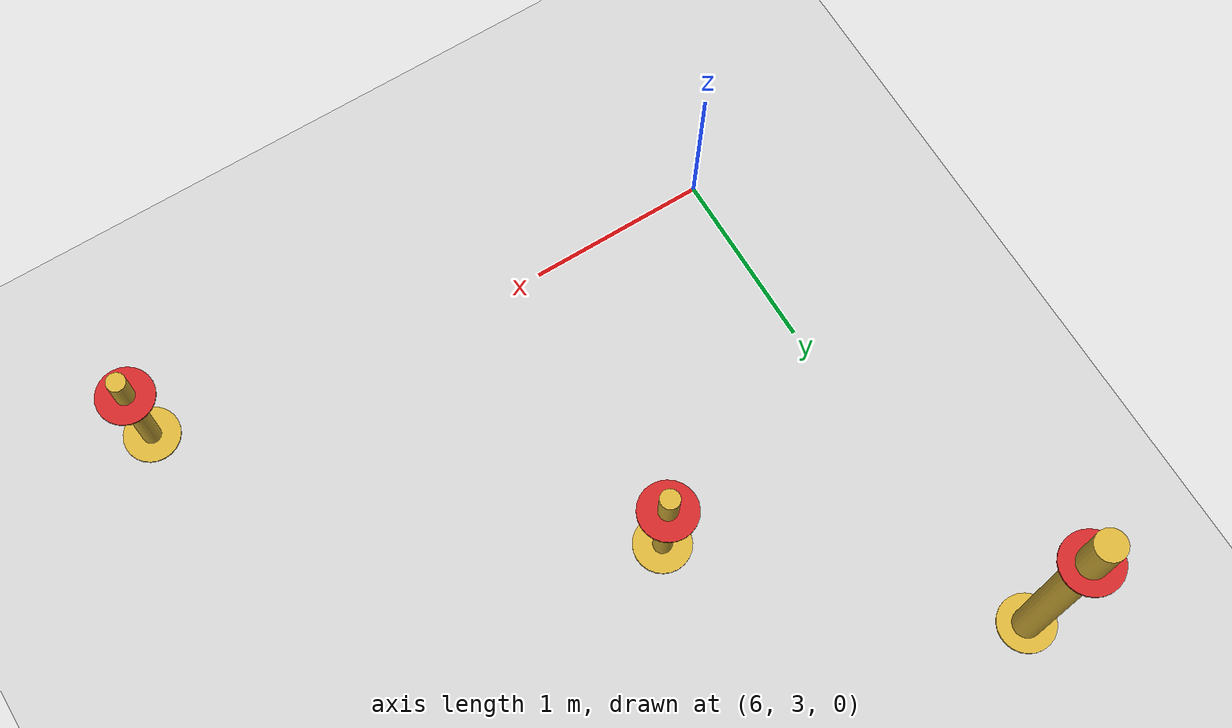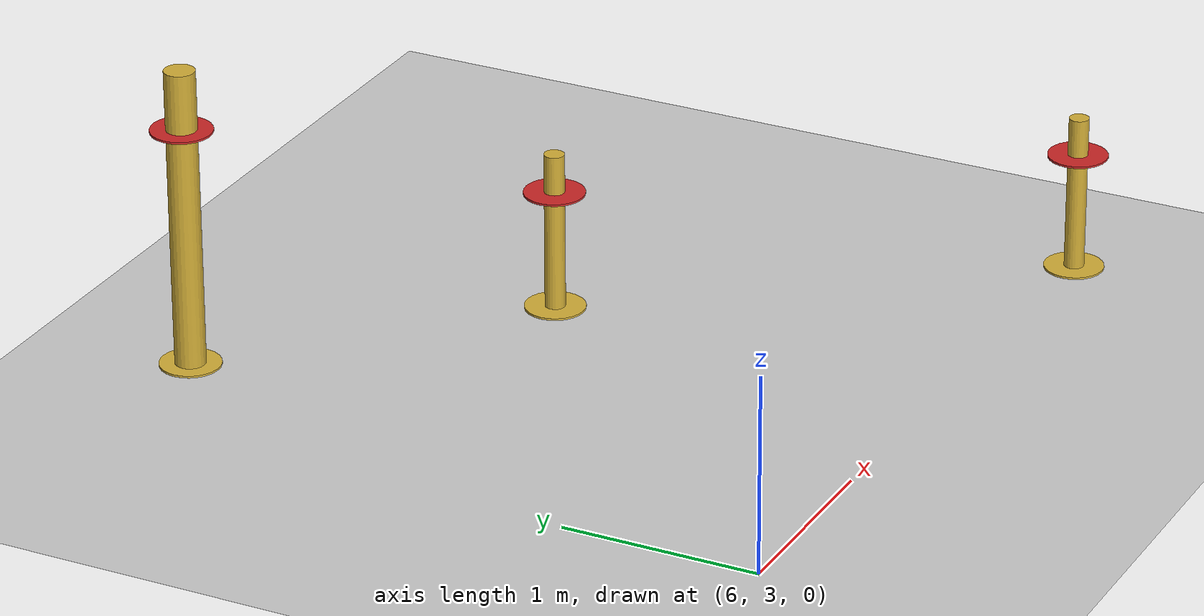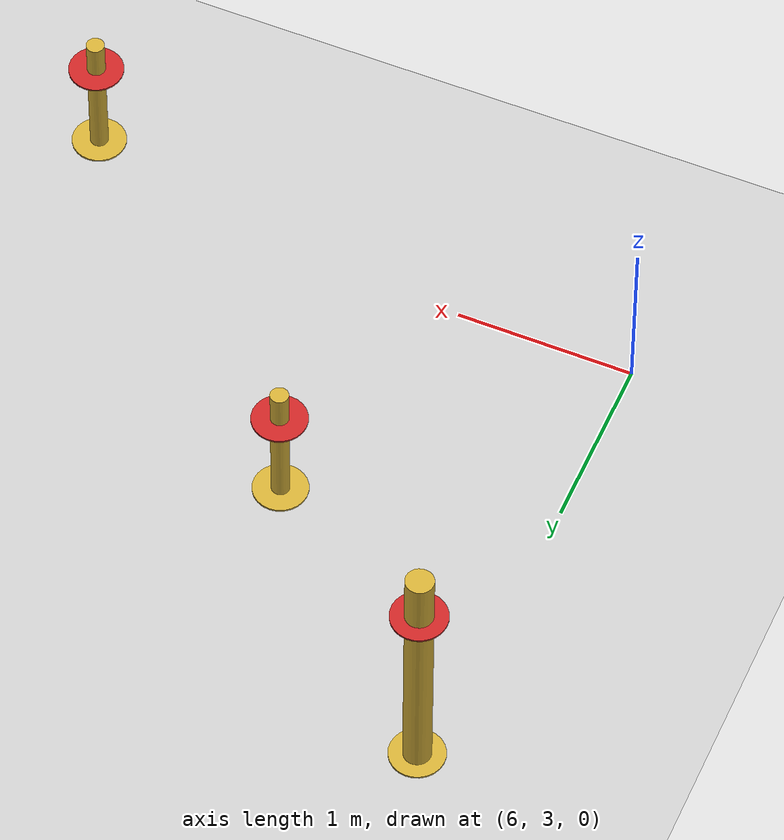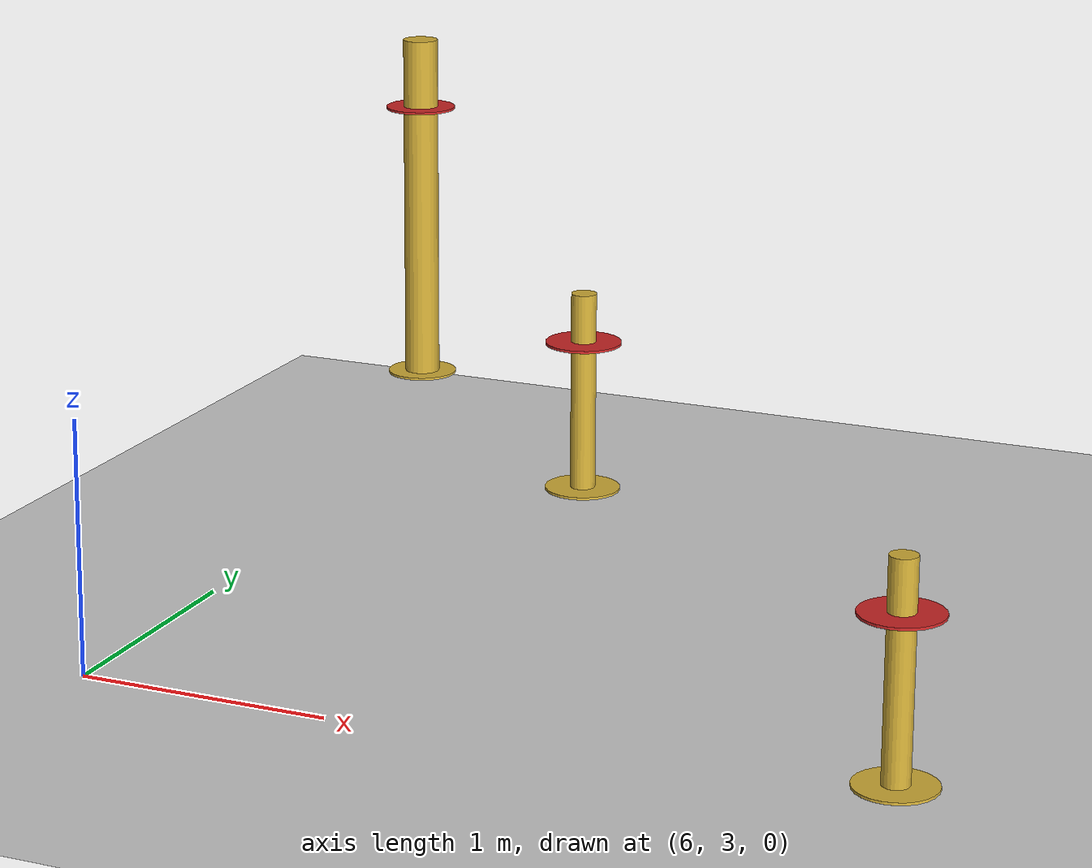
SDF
<sdf version="1.7">
 <world name="default">
  <model name="ground_plane">
   <static>1</static>
   <link name="link">
    <collision name="collision">
     <geometry><plane><normal>0 0 1</normal><size>100 100</size></plane></geometry>
     <surface>
      <contact><collide_bitmask>65535</collide_bitmask></contact>
      <friction><ode><mu>100</mu><mu2>50</mu2></ode></friction>
     </surface>
    </collision>
    <visual name="visual">
     <cast_shadows>0</cast_shadows>
     <geometry><plane><normal>0 0 1</normal><size>100 100</size></plane></geometry>
     <material>
      <script><uri>file://media/materials/scripts/gazebo.material</uri><name>Gazebo/Grey</name></script>
     </material>
    </visual>
   </link>
  </model>
  <model name="pole_tier_1_6">
   <link name="link">
    <inertial>
     <mass>1</mass>
     <inertia><ixx>0.145833</ixx><ixy>0</ixy><ixz>0</ixz><iyy>0.145833</iyy><iyz>0</iyz><izz>0.125</izz></inertia>
    </inertial>
    <pose>0 0 0.4 0 -0 0</pose>
    <visual name="visual">
     <geometry><cylinder><radius>0.05</radius><length>0.8</length></cylinder></geometry>
     <material>
      <script><name>Gazebo/Gray</name><uri>file://media/materials/scripts/gazebo.material</uri></script>
      <shader type="pixel"><normal_map>__default__</normal_map></shader>
      <ambient>0.83 0.686 0.216 1</ambient>
      <diffuse>0.83 0.686 0.216 1</diffuse>
      <specular>0.83 0.686 0.216 1</specular>
      <emissive>0 0 0 1</emissive>
     </material>
    </visual>
    <collision name="collision">
     <geometry><cylinder><radius>0.05</radius><length>0.8</length></cylinder></geometry>
     <surface>
      <friction>
       <ode><mu>1</mu><mu2>1</mu2><fdir1>0 0 0</fdir1><slip1>0</slip1><slip2>0</slip2></ode>
       <torsional>
        <coefficient>1</coefficient>
        <patch_radius>0</patch_radius>
        <surface_radius>0</surface_radius>
        <use_patch_radius>1</use_patch_radius>
        <ode><slip>0</slip></ode>
       </torsional>
      </friction>
      <bounce><restitution_coefficient>0</restitution_coefficient><threshold>1e+06</threshold></bounce>
      <contact>
       <collide_without_contact>0</collide_without_contact>
       <collide_without_contact_bitmask>1</collide_without_contact_bitmask>
       <collide_bitmask>1</collide_bitmask>
       <ode>
        <soft_cfm>0</soft_cfm>
        <soft_erp>0.2</soft_erp>
        <kp>1e+13</kp>
        <kd>1</kd>
        <max_vel>0.01</max_vel>
        <min_depth>0</min_depth>
       </ode>
       <bullet>
        <split_impulse>1</split_impulse>
        <split_impulse_penetration_threshold>-0.01</split_impulse_penetration_threshold>
        <soft_cfm>0</soft_cfm>
        <soft_erp>0.2</soft_erp>
        <kp>1e+13</kp>
        <kd>1</kd>
       </bullet>
      </contact>
     </surface>
    </collision>
   </link>
   <link name="link_clone">
    <inertial>
     <mass>1</mass>
     <inertia><ixx>0.145833</ixx><ixy>0</ixy><ixz>0</ixz><iyy>0.145833</iyy><iyz>0</iyz><izz>0.125</izz></inertia>
    </inertial>
    <visual name="visual">
     <geometry><cylinder><radius>0.15</radius><length>0.01</length></cylinder></geometry>
     <material>
      <script><name>Gazebo/Grey</name><uri>file://media/materials/scripts/gazebo.material</uri></script>
      <shader type="pixel"><normal_map>__default__</normal_map></shader>
      <ambient>0.83 0.686 0.216 1</ambient>
      <diffuse>0.7 0.7 0.7 1</diffuse>
      <specular>0.01 0.01 0.01 1</specular>
      <emissive>0 0 0 1</emissive>
     </material>
    </visual>
    <collision name="collision">
     <geometry><cylinder><radius>0.15</radius><length>0.01</length></cylinder></geometry>
     <surface>
      <friction>
       <ode><mu>1</mu><mu2>1</mu2><fdir1>0 0 0</fdir1><slip1>0</slip1><slip2>0</slip2></ode>
       <torsional>
        <coefficient>1</coefficient>
        <patch_radius>0</patch_radius>
        <surface_radius>0</surface_radius>
        <use_patch_radius>1</use_patch_radius>
        <ode><slip>0</slip></ode>
       </torsional>
      </friction>
      <bounce><restitution_coefficient>0</restitution_coefficient><threshold>1e+06</threshold></bounce>
      <contact>
       <collide_without_contact>0</collide_without_contact>
       <collide_without_contact_bitmask>1</collide_without_contact_bitmask>
       <collide_bitmask>1</collide_bitmask>
       <ode>
        <soft_cfm>0</soft_cfm>
        <soft_erp>0.2</soft_erp>
        <kp>1e+13</kp>
        <kd>1</kd>
        <max_vel>0.01</max_vel>
        <min_depth>0</min_depth>
       </ode>
       <bullet>
        <split_impulse>1</split_impulse>
        <split_impulse_penetration_threshold>-0.01</split_impulse_penetration_threshold>
        <soft_cfm>0</soft_cfm>
        <soft_erp>0.2</soft_erp>
        <kp>1e+13</kp>
        <kd>1</kd>
       </bullet>
      </contact>
     </surface>
    </collision>
   </link>
   <link name="link_clone_clone">
    <inertial>
     <mass>1</mass>
     <inertia><ixx>0.145833</ixx><ixy>0</ixy><ixz>0</ixz><iyy>0.145833</iyy><iyz>0</iyz><izz>0.125</izz></inertia>
    </inertial>
    <pose>0 0 0.6 0 -0 0</pose>
    <visual name="visual">
     <geometry><cylinder><radius>0.15</radius><length>0.01</length></cylinder></geometry>
     <material>
      <script><name>Gazebo/Red</name><uri>file://media/materials/scripts/gazebo.material</uri></script>
      <shader type="pixel"><normal_map>__default__</normal_map></shader>
      <ambient>0.83 0.686 0.216 1</ambient>
      <diffuse>0.7 0.7 0.7 1</diffuse>
      <specular>0.01 0.01 0.01 1</specular>
      <emissive>0 0 0 1</emissive>
     </material>
    </visual>
    <collision name="collision">
     <geometry><cylinder><radius>0.15</radius><length>0.01</length></cylinder></geometry>
     <surface>
      <friction>
       <ode><mu>1</mu><mu2>1</mu2><fdir1>0 0 0</fdir1><slip1>0</slip1><slip2>0</slip2></ode>
       <torsional>
        <coefficient>1</coefficient>
        <patch_radius>0</patch_radius>
        <surface_radius>0</surface_radius>
        <use_patch_radius>1</use_patch_radius>
        <ode><slip>0</slip></ode>
       </torsional>
      </friction>
      <bounce><restitution_coefficient>0</restitution_coefficient><threshold>1e+06</threshold></bounce>
      <contact>
       <collide_without_contact>0</collide_without_contact>
       <collide_without_contact_bitmask>1</collide_without_contact_bitmask>
       <collide_bitmask>1</collide_bitmask>
       <ode>
        <soft_cfm>0</soft_cfm>
        <soft_erp>0.2</soft_erp>
        <kp>1e+13</kp>
        <kd>1</kd>
        <max_vel>0.01</max_vel>
        <min_depth>0</min_depth>
       </ode>
       <bullet>
        <split_impulse>1</split_impulse>
        <split_impulse_penetration_threshold>-0.01</split_impulse_penetration_threshold>
        <soft_cfm>0</soft_cfm>
        <soft_erp>0.2</soft_erp>
        <kp>1e+13</kp>
        <kd>1</kd>
       </bullet>
      </contact>
     </surface>
    </collision>
   </link>
   <joint name="link_JOINT_0" type="fixed">
    <parent>link</parent>
    <child>link_clone</child>
    <physics>
     <ode><limit><cfm>0</cfm><erp>0.2</erp></limit><suspension><cfm>0</cfm><erp>0.2</erp></suspension></ode>
    </physics>
   </joint>
   <joint name="link_JOINT_1" type="fixed">
    <parent>link</parent>
    <child>link_clone_clone</child>
    <physics>
     <ode><limit><cfm>0</cfm><erp>0.2</erp></limit><suspension><cfm>0</cfm><erp>0.2</erp></suspension></ode>
    </physics>
   </joint>
   <static>0</static>
   <pose>9.19959 2.80084 0.205004 6e-06 2.3e-05 0.002784</pose>
  </model>
  <model name="pole_tier_1_4">
   <link name="link">
    <inertial>
     <mass>1</mass>
     <inertia><ixx>0.145833</ixx><ixy>0</ixy><ixz>0</ixz><iyy>0.145833</iyy><iyz>0</iyz><izz>0.125</izz></inertia>
    </inertial>
    <pose>0 0 0.4 0 -0 0</pose>
    <visual name="visual">
     <geometry><cylinder><radius>0.05</radius><length>0.8</length></cylinder></geometry>
     <material>
      <script><name>Gazebo/Gray</name><uri>file://media/materials/scripts/gazebo.material</uri></script>
      <shader type="pixel"><normal_map>__default__</normal_map></shader>
      <ambient>0.83 0.686 0.216 1</ambient>
      <diffuse>0.83 0.686 0.216 1</diffuse>
      <specular>0.83 0.686 0.216 1</specular>
      <emissive>0 0 0 1</emissive>
     </material>
    </visual>
    <collision name="collision">
     <geometry><cylinder><radius>0.05</radius><length>0.8</length></cylinder></geometry>
     <surface>
      <friction>
       <ode><mu>1</mu><mu2>1</mu2><fdir1>0 0 0</fdir1><slip1>0</slip1><slip2>0</slip2></ode>
       <torsional>
        <coefficient>1</coefficient>
        <patch_radius>0</patch_radius>
        <surface_radius>0</surface_radius>
        <use_patch_radius>1</use_patch_radius>
        <ode><slip>0</slip></ode>
       </torsional>
      </friction>
      <bounce><restitution_coefficient>0</restitution_coefficient><threshold>1e+06</threshold></bounce>
      <contact>
       <collide_without_contact>0</collide_without_contact>
       <collide_without_contact_bitmask>1</collide_without_contact_bitmask>
       <collide_bitmask>1</collide_bitmask>
       <ode>
        <soft_cfm>0</soft_cfm>
        <soft_erp>0.2</soft_erp>
        <kp>1e+13</kp>
        <kd>1</kd>
        <max_vel>0.01</max_vel>
        <min_depth>0</min_depth>
       </ode>
       <bullet>
        <split_impulse>1</split_impulse>
        <split_impulse_penetration_threshold>-0.01</split_impulse_penetration_threshold>
        <soft_cfm>0</soft_cfm>
        <soft_erp>0.2</soft_erp>
        <kp>1e+13</kp>
        <kd>1</kd>
       </bullet>
      </contact>
     </surface>
    </collision>
   </link>
   <link name="link_clone">
    <inertial>
     <mass>1</mass>
     <inertia><ixx>0.145833</ixx><ixy>0</ixy><ixz>0</ixz><iyy>0.145833</iyy><iyz>0</iyz><izz>0.125</izz></inertia>
    </inertial>
    <visual name="visual">
     <geometry><cylinder><radius>0.15</radius><length>0.01</length></cylinder></geometry>
     <material>
      <script><name>Gazebo/Grey</name><uri>file://media/materials/scripts/gazebo.material</uri></script>
      <shader type="pixel"><normal_map>__default__</normal_map></shader>
      <ambient>0.83 0.686 0.216 1</ambient>
      <diffuse>0.7 0.7 0.7 1</diffuse>
      <specular>0.01 0.01 0.01 1</specular>
      <emissive>0 0 0 1</emissive>
     </material>
    </visual>
    <collision name="collision">
     <geometry><cylinder><radius>0.15</radius><length>0.01</length></cylinder></geometry>
     <surface>
      <friction>
       <ode><mu>1</mu><mu2>1</mu2><fdir1>0 0 0</fdir1><slip1>0</slip1><slip2>0</slip2></ode>
       <torsional>
        <coefficient>1</coefficient>
        <patch_radius>0</patch_radius>
        <surface_radius>0</surface_radius>
        <use_patch_radius>1</use_patch_radius>
        <ode><slip>0</slip></ode>
       </torsional>
      </friction>
      <bounce><restitution_coefficient>0</restitution_coefficient><threshold>1e+06</threshold></bounce>
      <contact>
       <collide_without_contact>0</collide_without_contact>
       <collide_without_contact_bitmask>1</collide_without_contact_bitmask>
       <collide_bitmask>1</collide_bitmask>
       <ode>
        <soft_cfm>0</soft_cfm>
        <soft_erp>0.2</soft_erp>
        <kp>1e+13</kp>
        <kd>1</kd>
        <max_vel>0.01</max_vel>
        <min_depth>0</min_depth>
       </ode>
       <bullet>
        <split_impulse>1</split_impulse>
        <split_impulse_penetration_threshold>-0.01</split_impulse_penetration_threshold>
        <soft_cfm>0</soft_cfm>
        <soft_erp>0.2</soft_erp>
        <kp>1e+13</kp>
        <kd>1</kd>
       </bullet>
      </contact>
     </surface>
    </collision>
   </link>
   <link name="link_clone_clone">
    <inertial>
     <mass>1</mass>
     <inertia><ixx>0.145833</ixx><ixy>0</ixy><ixz>0</ixz><iyy>0.145833</iyy><iyz>0</iyz><izz>0.125</izz></inertia>
    </inertial>
    <pose>0 0 0.6 0 -0 0</pose>
    <visual name="visual">
     <geometry><cylinder><radius>0.15</radius><length>0.01</length></cylinder></geometry>
     <material>
      <script><name>Gazebo/Red</name><uri>file://media/materials/scripts/gazebo.material</uri></script>
      <shader type="pixel"><normal_map>__default__</normal_map></shader>
      <ambient>0.83 0.686 0.216 1</ambient>
      <diffuse>0.7 0.7 0.7 1</diffuse>
      <specular>0.01 0.01 0.01 1</specular>
      <emissive>0 0 0 1</emissive>
     </material>
    </visual>
    <collision name="collision">
     <geometry><cylinder><radius>0.15</radius><length>0.01</length></cylinder></geometry>
     <surface>
      <friction>
       <ode><mu>1</mu><mu2>1</mu2><fdir1>0 0 0</fdir1><slip1>0</slip1><slip2>0</slip2></ode>
       <torsional>
        <coefficient>1</coefficient>
        <patch_radius>0</patch_radius>
        <surface_radius>0</surface_radius>
        <use_patch_radius>1</use_patch_radius>
        <ode><slip>0</slip></ode>
       </torsional>
      </friction>
      <bounce><restitution_coefficient>0</restitution_coefficient><threshold>1e+06</threshold></bounce>
      <contact>
       <collide_without_contact>0</collide_without_contact>
       <collide_without_contact_bitmask>1</collide_without_contact_bitmask>
       <collide_bitmask>1</collide_bitmask>
       <ode>
        <soft_cfm>0</soft_cfm>
        <soft_erp>0.2</soft_erp>
        <kp>1e+13</kp>
        <kd>1</kd>
        <max_vel>0.01</max_vel>
        <min_depth>0</min_depth>
       </ode>
       <bullet>
        <split_impulse>1</split_impulse>
        <split_impulse_penetration_threshold>-0.01</split_impulse_penetration_threshold>
        <soft_cfm>0</soft_cfm>
        <soft_erp>0.2</soft_erp>
        <kp>1e+13</kp>
        <kd>1</kd>
       </bullet>
      </contact>
     </surface>
    </collision>
   </link>
   <joint name="link_JOINT_0" type="fixed">
    <parent>link</parent>
    <child>link_clone</child>
    <physics>
     <ode><limit><cfm>0</cfm><erp>0.2</erp></limit><suspension><cfm>0</cfm><erp>0.2</erp></suspension></ode>
    </physics>
   </joint>
   <joint name="link_JOINT_1" type="fixed">
    <parent>link</parent>
    <child>link_clone_clone</child>
    <physics>
     <ode><limit><cfm>0</cfm><erp>0.2</erp></limit><suspension><cfm>0</cfm><erp>0.2</erp></suspension></ode>
    </physics>
   </joint>
   <static>0</static>
   <pose>7.29992 4.70017 0.405004 6e-06 2.3e-05 -0.000894</pose>
  </model>
  <model name="pole_tier_2">
   <link name="link">
    <inertial>
     <mass>100</mass>
     <inertia><ixx>18.8906</ixx><ixy>0</ixy><ixz>0</ixz><iyy>18.8906</iyy><iyz>0</iyz><izz>0.28125</izz></inertia>
    </inertial>
    <pose>-0 -0 0.75 0 -0 0</pose>
    <visual name="visual">
     <geometry><cylinder><radius>0.075</radius><length>1.5</length></cylinder></geometry>
     <material>
      <script><name>Gazebo/Gray</name><uri>file://media/materials/scripts/gazebo.material</uri></script>
      <shader type="pixel"><normal_map>__default__</normal_map></shader>
      <ambient>0.83 0.686 0.216 1</ambient>
      <diffuse>0.83 0.686 0.216 1</diffuse>
      <specular>0.83 0.686 0.216 1</specular>
      <emissive>0 0 0 1</emissive>
     </material>
    </visual>
    <collision name="collision">
     <geometry><cylinder><radius>0.075</radius><length>1.5</length></cylinder></geometry>
     <surface>
      <friction>
       <ode><mu>1</mu><mu2>1</mu2><fdir1>0 0 0</fdir1><slip1>0</slip1><slip2>0</slip2></ode>
       <torsional>
        <coefficient>1</coefficient>
        <patch_radius>0</patch_radius>
        <surface_radius>0</surface_radius>
        <use_patch_radius>1</use_patch_radius>
        <ode><slip>0</slip></ode>
       </torsional>
      </friction>
      <bounce><restitution_coefficient>0</restitution_coefficient><threshold>1e+06</threshold></bounce>
      <contact>
       <collide_without_contact>0</collide_without_contact>
       <collide_without_contact_bitmask>1</collide_without_contact_bitmask>
       <collide_bitmask>1</collide_bitmask>
       <ode>
        <soft_cfm>0</soft_cfm>
        <soft_erp>0.2</soft_erp>
        <kp>1e+13</kp>
        <kd>1</kd>
        <max_vel>0.01</max_vel>
        <min_depth>0</min_depth>
       </ode>
       <bullet>
        <split_impulse>1</split_impulse>
        <split_impulse_penetration_threshold>-0.01</split_impulse_penetration_threshold>
        <soft_cfm>0</soft_cfm>
        <soft_erp>0.2</soft_erp>
        <kp>1e+13</kp>
        <kd>1</kd>
       </bullet>
      </contact>
     </surface>
    </collision>
   </link>
   <link name="link_clone">
    <inertial>
     <mass>1</mass>
     <inertia><ixx>0.145833</ixx><ixy>0</ixy><ixz>0</ixz><iyy>0.145833</iyy><iyz>0</iyz><izz>0.125</izz></inertia>
    </inertial>
    <visual name="visual">
     <geometry><cylinder><radius>0.15</radius><length>0.01</length></cylinder></geometry>
     <material>
      <script><name>Gazebo/Grey</name><uri>file://media/materials/scripts/gazebo.material</uri></script>
      <shader type="pixel"><normal_map>__default__</normal_map></shader>
      <ambient>0.83 0.686 0.216 1</ambient>
      <diffuse>0.7 0.7 0.7 1</diffuse>
      <specular>0.01 0.01 0.01 1</specular>
      <emissive>0 0 0 1</emissive>
     </material>
    </visual>
    <collision name="collision">
     <geometry><cylinder><radius>0.15</radius><length>0.01</length></cylinder></geometry>
     <surface>
      <friction>
       <ode><mu>1</mu><mu2>1</mu2><fdir1>0 0 0</fdir1><slip1>0</slip1><slip2>0</slip2></ode>
       <torsional>
        <coefficient>1</coefficient>
        <patch_radius>0</patch_radius>
        <surface_radius>0</surface_radius>
        <use_patch_radius>1</use_patch_radius>
        <ode><slip>0</slip></ode>
       </torsional>
      </friction>
      <bounce><restitution_coefficient>0</restitution_coefficient><threshold>1e+06</threshold></bounce>
      <contact>
       <collide_without_contact>0</collide_without_contact>
       <collide_without_contact_bitmask>1</collide_without_contact_bitmask>
       <collide_bitmask>1</collide_bitmask>
       <ode>
        <soft_cfm>0</soft_cfm>
        <soft_erp>0.2</soft_erp>
        <kp>1e+13</kp>
        <kd>1</kd>
        <max_vel>0.01</max_vel>
        <min_depth>0</min_depth>
       </ode>
       <bullet>
        <split_impulse>1</split_impulse>
        <split_impulse_penetration_threshold>-0.01</split_impulse_penetration_threshold>
        <soft_cfm>0</soft_cfm>
        <soft_erp>0.2</soft_erp>
        <kp>1e+13</kp>
        <kd>1</kd>
       </bullet>
      </contact>
     </surface>
    </collision>
   </link>
   <link name="link_clone_clone">
    <inertial>
     <mass>1</mass>
     <inertia><ixx>0.145833</ixx><ixy>0</ixy><ixz>0</ixz><iyy>0.145833</iyy><iyz>0</iyz><izz>0.125</izz></inertia>
    </inertial>
    <pose>-0 0 1.2 0 -0 0</pose>
    <visual name="visual">
     <geometry><cylinder><radius>0.15</radius><length>0.01</length></cylinder></geometry>
     <material>
      <script><name>Gazebo/Red</name><uri>file://media/materials/scripts/gazebo.material</uri></script>
      <shader type="pixel"><normal_map>__default__</normal_map></shader>
      <ambient>0.83 0.686 0.216 1</ambient>
      <diffuse>0.7 0.7 0.7 1</diffuse>
      <specular>0.01 0.01 0.01 1</specular>
      <emissive>0 0 0 1</emissive>
     </material>
    </visual>
    <collision name="collision">
     <geometry><cylinder><radius>0.15</radius><length>0.01</length></cylinder></geometry>
     <surface>
      <friction>
       <ode><mu>1</mu><mu2>1</mu2><fdir1>0 0 0</fdir1><slip1>0</slip1><slip2>0</slip2></ode>
       <torsional>
        <coefficient>1</coefficient>
        <patch_radius>0</patch_radius>
        <surface_radius>0</surface_radius>
        <use_patch_radius>1</use_patch_radius>
        <ode><slip>0</slip></ode>
       </torsional>
      </friction>
      <bounce><restitution_coefficient>0</restitution_coefficient><threshold>1e+06</threshold></bounce>
      <contact>
       <collide_without_contact>0</collide_without_contact>
       <collide_without_contact_bitmask>1</collide_without_contact_bitmask>
       <collide_bitmask>1</collide_bitmask>
       <ode>
        <soft_cfm>0</soft_cfm>
        <soft_erp>0.2</soft_erp>
        <kp>1e+13</kp>
        <kd>1</kd>
        <max_vel>0.01</max_vel>
        <min_depth>0</min_depth>
       </ode>
       <bullet>
        <split_impulse>1</split_impulse>
        <split_impulse_penetration_threshold>-0.01</split_impulse_penetration_threshold>
        <soft_cfm>0</soft_cfm>
        <soft_erp>0.2</soft_erp>
        <kp>1e+13</kp>
        <kd>1</kd>
       </bullet>
      </contact>
     </surface>
    </collision>
   </link>
   <joint name="link_JOINT_0" type="fixed">
    <parent>link</parent>
    <child>link_clone</child>
    <physics>
     <ode><limit><cfm>0</cfm><erp>0.2</erp></limit><suspension><cfm>0</cfm><erp>0.2</erp></suspension></ode>
    </physics>
   </joint>
   <joint name="link_JOINT_1" type="fixed">
    <parent>link</parent>
    <child>link_clone_clone</child>
    <physics>
     <ode><limit><cfm>0</cfm><erp>0.2</erp></limit><suspension><cfm>0</cfm><erp>0.2</erp></suspension></ode>
    </physics>
   </joint>
   <static>0</static>
   <pose>6.00045 5.95607 0.404951 7e-06 -0.000105 -0.046116</pose>
  </model>
 </world>
</sdf>
